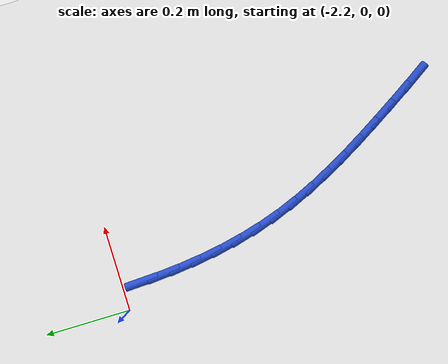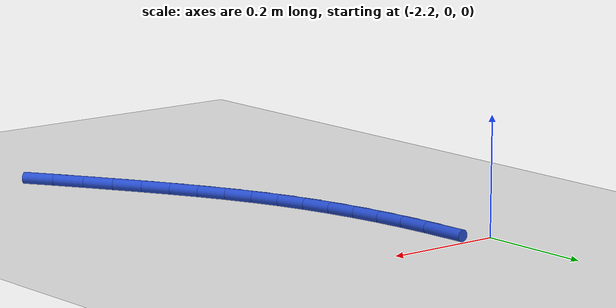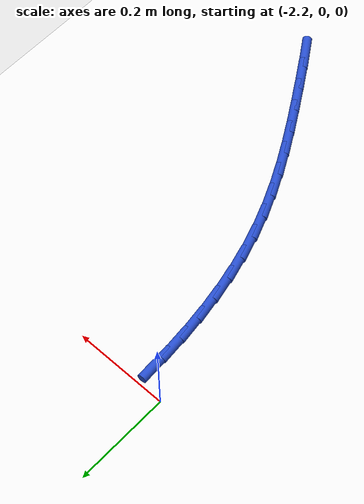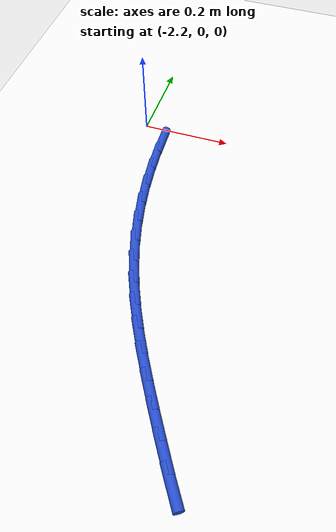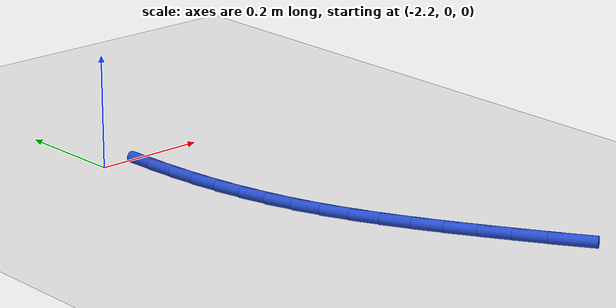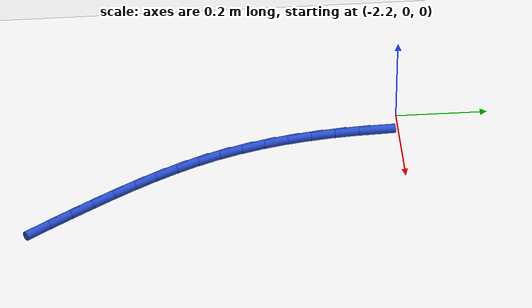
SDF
<sdf version="1.6">
 <world name="default">
  <model name="ground_plane">
   <static>1</static>
   <link name="link">
    <collision name="collision">
     <geometry><plane><normal>0 0 1</normal><size>100 100</size></plane></geometry>
     <surface><friction><ode><mu>100</mu><mu2>50</mu2></ode></friction></surface>
    </collision>
    <visual name="visual">
     <cast_shadows>0</cast_shadows>
     <geometry><plane><normal>0 0 1</normal><size>100 100</size></plane></geometry>
     <material>
      <script><uri>file://media/materials/scripts/gazebo.material</uri><name>Gazebo/WhiteGlow</name></script>
     </material>
    </visual>
   </link>
  </model>
  <model name="line">
   <link name="link_66">
    <pose>-2.1450279352135544 -0.047350880085587466 0.01 0 1.57 -1.525233185829115</pose>
    <collision name="collision">
     <geometry><cylinder><radius>0.01</radius><length>0.08</length></cylinder></geometry>
    </collision>
    <visual name="visual">
     <material>
      <script><name>Gazebo/Blue</name><uri>file://media/materials/scripts/gazebo.material</uri></script>
     </material>
     <geometry><cylinder><radius>0.01</radius><length>0.08</length></cylinder></geometry>
    </visual>
   </link>
   <link name="link_67">
    <pose>-2.1426022640698887 -0.10055160979044517 0.01 0 1.57 -1.4874712171642526</pose>
    <collision name="collision">
     <geometry><cylinder><radius>0.01</radius><length>0.08</length></cylinder></geometry>
    </collision>
    <visual name="visual">
     <material>
      <script><name>Gazebo/Blue</name><uri>file://media/materials/scripts/gazebo.material</uri></script>
     </material>
     <geometry><cylinder><radius>0.01</radius><length>0.08</length></cylinder></geometry>
    </visual>
   </link>
   <link name="link_68">
    <pose>-2.1382057828000436 -0.1531924229258147 0.01 0 1.57 -1.4465115202679628</pose>
    <collision name="collision">
     <geometry><cylinder><radius>0.01</radius><length>0.08</length></cylinder></geometry>
    </collision>
    <visual name="visual">
     <material>
      <script><name>Gazebo/Blue</name><uri>file://media/materials/scripts/gazebo.material</uri></script>
     </material>
     <geometry><cylinder><radius>0.01</radius><length>0.08</length></cylinder></geometry>
    </visual>
   </link>
   <link name="link_69">
    <pose>-2.1317097054224297 -0.20519069513967184 0.01 0 1.57 -1.4022539358407333</pose>
    <collision name="collision">
     <geometry><cylinder><radius>0.01</radius><length>0.08</length></cylinder></geometry>
    </collision>
    <visual name="visual">
     <material>
      <script><name>Gazebo/Blue</name><uri>file://media/materials/scripts/gazebo.material</uri></script>
     </material>
     <geometry><cylinder><radius>0.01</radius><length>0.08</length></cylinder></geometry>
    </visual>
   </link>
   <link name="link_70">
    <pose>-2.122985245955461 -0.2564638020799927 0.01 0 1.57 -1.3546381009505204</pose>
    <collision name="collision">
     <geometry><cylinder><radius>0.01</radius><length>0.08</length></cylinder></geometry>
    </collision>
    <visual name="visual">
     <material>
      <script><name>Gazebo/Blue</name><uri>file://media/materials/scripts/gazebo.material</uri></script>
     </material>
     <geometry><cylinder><radius>0.01</radius><length>0.08</length></cylinder></geometry>
    </visual>
   </link>
   <link name="link_71">
    <pose>-2.11190361841755 -0.30692911939475087 0.01 0 1.57 -1.3036591859506106</pose>
    <collision name="collision">
     <geometry><cylinder><radius>0.01</radius><length>0.08</length></cylinder></geometry>
    </collision>
    <visual name="visual">
     <material>
      <script><name>Gazebo/Blue</name><uri>file://media/materials/scripts/gazebo.material</uri></script>
     </material>
     <geometry><cylinder><radius>0.01</radius><length>0.08</length></cylinder></geometry>
    </visual>
   </link>
   <link name="link_72">
    <pose>-2.0983360368271113 -0.3565040227319223 0.01 0 1.57 -1.2493873889205098</pose>
    <collision name="collision">
     <geometry><cylinder><radius>0.01</radius><length>0.08</length></cylinder></geometry>
    </collision>
    <visual name="visual">
     <material>
      <script><name>Gazebo/Blue</name><uri>file://media/materials/scripts/gazebo.material</uri></script>
     </material>
     <geometry><cylinder><radius>0.01</radius><length>0.08</length></cylinder></geometry>
    </visual>
   </link>
   <link name="link_73">
    <pose>-2.08215382723749 -0.40510598931750064 0.01 0 1.57 -1.1942420893396488</pose>
    <collision name="collision">
     <geometry><cylinder><radius>0.01</radius><length>0.08</length></cylinder></geometry>
    </collision>
    <visual name="visual">
     <material>
      <script><name>Gazebo/Blue</name><uri>file://media/materials/scripts/gazebo.material</uri></script>
     </material>
     <geometry><cylinder><radius>0.01</radius><length>0.08</length></cylinder></geometry>
    </visual>
   </link>
   <link name="link_74">
    <pose>-2.0633199907001973 -0.4527356147798215 0.01 0 1.57 -1.145036554151002</pose>
    <collision name="collision">
     <geometry><cylinder><radius>0.01</radius><length>0.08</length></cylinder></geometry>
    </collision>
    <visual name="visual">
     <material>
      <script><name>Gazebo/Blue</name><uri>file://media/materials/scripts/gazebo.material</uri></script>
     </material>
     <geometry><cylinder><radius>0.01</radius><length>0.08</length></cylinder></geometry>
    </visual>
   </link>
   <link name="link_75">
    <pose>-2.042054879643799 -0.4996268259250735 0.01 0 1.57 -1.1034074540166074</pose>
    <collision name="collision">
     <geometry><cylinder><radius>0.01</radius><length>0.08</length></cylinder></geometry>
    </collision>
    <visual name="visual">
     <material>
      <script><name>Gazebo/Blue</name><uri>file://media/materials/scripts/gazebo.material</uri></script>
     </material>
     <geometry><cylinder><radius>0.01</radius><length>0.08</length></cylinder></geometry>
    </visual>
   </link>
   <link name="link_76">
    <pose>-2.0186236691109634 -0.5460541886011403 0.01 0 1.57 -1.069595258729821</pose>
    <collision name="collision">
     <geometry><cylinder><radius>0.01</radius><length>0.08</length></cylinder></geometry>
    </collision>
    <visual name="visual">
     <material>
      <script><name>Gazebo/Blue</name><uri>file://media/materials/scripts/gazebo.material</uri></script>
     </material>
     <geometry><cylinder><radius>0.01</radius><length>0.08</length></cylinder></geometry>
    </visual>
   </link>
   <link name="link_77">
    <pose>-1.9932915341443582 -0.592292268655908 0.01 0 1.57 -1.043593328951062</pose>
    <collision name="collision">
     <geometry><cylinder><radius>0.01</radius><length>0.08</length></cylinder></geometry>
    </collision>
    <visual name="visual">
     <material>
      <script><name>Gazebo/Blue</name><uri>file://media/materials/scripts/gazebo.material</uri></script>
     </material>
     <geometry><cylinder><radius>0.01</radius><length>0.08</length></cylinder></geometry>
    </visual>
   </link>
   <link name="link_78">
    <pose>-1.9663236497866512 -0.6386156319372622 0.01 0 1.57 -1.0252182846938378</pose>
    <collision name="collision">
     <geometry><cylinder><radius>0.01</radius><length>0.08</length></cylinder></geometry>
    </collision>
    <visual name="visual">
     <material>
      <script><name>Gazebo/Blue</name><uri>file://media/materials/scripts/gazebo.material</uri></script>
     </material>
     <geometry><cylinder><radius>0.01</radius><length>0.08</length></cylinder></geometry>
    </visual>
   </link>
   <link name="link_79">
    <pose>-1.9379851910805117 -0.6852988442930865 0.01 0 1.57 -1.0140444465380622</pose>
    <collision name="collision">
     <geometry><cylinder><radius>0.01</radius><length>0.08</length></cylinder></geometry>
    </collision>
    <visual name="visual">
     <material>
      <script><name>Gazebo/Blue</name><uri>file://media/materials/scripts/gazebo.material</uri></script>
     </material>
     <geometry><cylinder><radius>0.01</radius><length>0.08</length></cylinder></geometry>
    </visual>
   </link>
   <link name="link_80">
    <pose>-1.9085382311467667 -0.7326082233659716 0.01 0 1.57 -1.0036735552664617</pose>
    <collision name="collision">
     <geometry><cylinder><radius>0.01</radius><length>0.08</length></cylinder></geometry>
    </collision>
    <visual name="visual">
     <material>
      <script><name>Gazebo/Blue</name><uri>file://media/materials/scripts/gazebo.material</uri></script>
     </material>
     <geometry><cylinder><radius>0.01</radius><length>0.08</length></cylinder></geometry>
    </visual>
   </link>
   <link name="link_81">
    <pose>-1.8780936760398612 -0.7804081240601038 0.01 0 1.57 -0.9853092563917417</pose>
    <collision name="collision">
     <geometry><cylinder><radius>0.01</radius><length>0.08</length></cylinder></geometry>
    </collision>
    <visual name="visual">
     <material>
      <script><name>Gazebo/Blue</name><uri>file://media/materials/scripts/gazebo.material</uri></script>
     </material>
     <geometry><cylinder><radius>0.01</radius><length>0.08</length></cylinder></geometry>
    </visual>
   </link>
  </model>
 </world>
</sdf>
